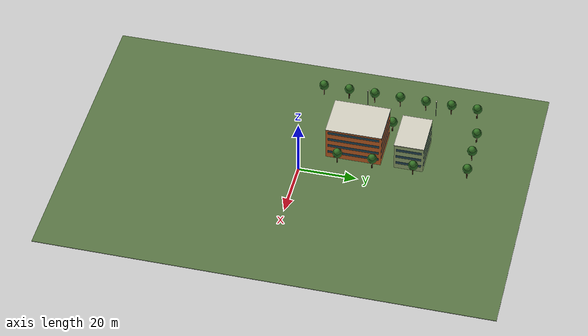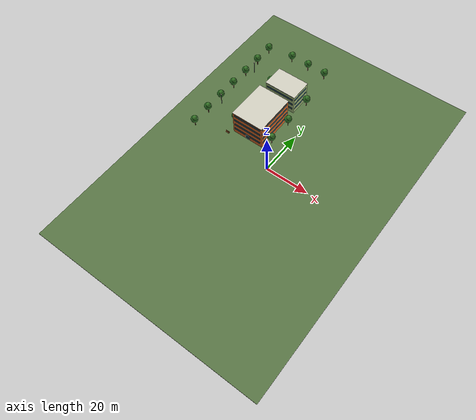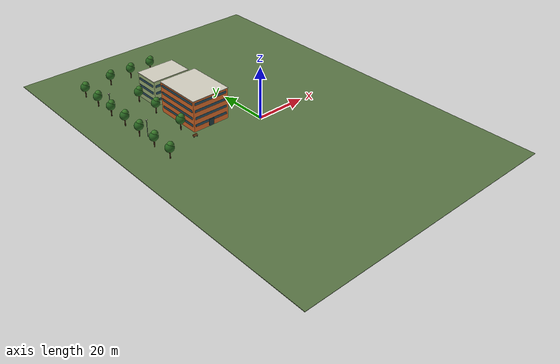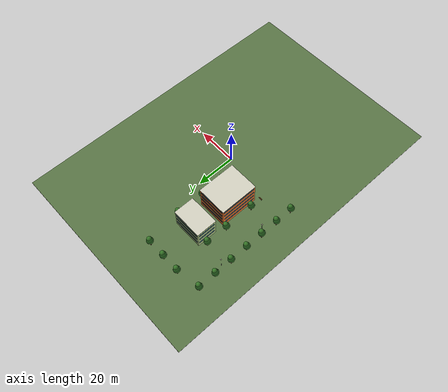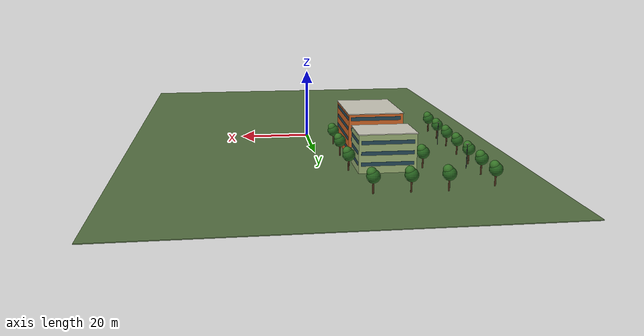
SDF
<sdf version="1.8">
 <world name="ute_city_v1">
  <model name="ground">
   <static>true</static>
   <link name="link">
    <visual name="ground">
     <pose>0 0 -0.1 0 0 0</pose>
     <geometry><box><size>106 154 0.2</size></box></geometry>
     <material>
      <ambient>0.35 0.46 0.27 1</ambient>
      <diffuse>0.35 0.46 0.27 1</diffuse>
      <specular>0.05 0.05 0.05 1</specular>
     </material>
    </visual>
    <collision name="ground_collision">
     <pose>0 0 -0.1 0 0 0</pose>
     <geometry><box><size>106 154 0.2</size></box></geometry>
    </collision>
   </link>
  </model>
  <model name="A_administration">
   <static>true</static>
   <pose>-16 17 0 0 0 0</pose>
   <link name="link">
    <visual name="block">
     <pose>0 0 6 0 0 0</pose>
     <geometry><box><size>15 19 12</size></box></geometry>
     <material>
      <ambient>0.85 0.42 0.16 1</ambient>
      <diffuse>0.85 0.42 0.16 1</diffuse>
      <specular>0.05 0.05 0.05 1</specular>
     </material>
    </visual>
    <collision name="block_collision">
     <pose>0 0 6 0 0 0</pose>
     <geometry><box><size>15 19 12</size></box></geometry>
    </collision>
    <visual name="roof">
     <pose>0 0 12.12 0 0 0</pose>
     <geometry><box><size>15.3 19.3 0.24</size></box></geometry>
     <material>
      <ambient>0.83 0.82 0.76 1</ambient>
      <diffuse>0.83 0.82 0.76 1</diffuse>
      <specular>0.05 0.05 0.05 1</specular>
     </material>
    </visual>
    <collision name="roof_collision">
     <pose>0 0 12.12 0 0 0</pose>
     <geometry><box><size>15.3 19.3 0.24</size></box></geometry>
    </collision>
    <visual name="windows_y_1_-1">
     <pose>0 -9.518 2.4 0 0 0</pose>
     <geometry><box><size>13.7 0.03 1</size></box></geometry>
     <material>
      <ambient>0.16 0.30 0.36 1</ambient>
      <diffuse>0.16 0.30 0.36 1</diffuse>
      <specular>0.05 0.05 0.05 1</specular>
     </material>
    </visual>
    <visual name="windows_x_1_-1">
     <pose>-7.518 0 2.4 0 0 0</pose>
     <geometry><box><size>0.03 17.7 1</size></box></geometry>
     <material>
      <ambient>0.16 0.30 0.36 1</ambient>
      <diffuse>0.16 0.30 0.36 1</diffuse>
      <specular>0.05 0.05 0.05 1</specular>
     </material>
    </visual>
    <visual name="windows_y_1_1">
     <pose>0 9.518 2.4 0 0 0</pose>
     <geometry><box><size>13.7 0.03 1</size></box></geometry>
     <material>
      <ambient>0.16 0.30 0.36 1</ambient>
      <diffuse>0.16 0.30 0.36 1</diffuse>
      <specular>0.05 0.05 0.05 1</specular>
     </material>
    </visual>
    <visual name="windows_x_1_1">
     <pose>7.518 0 2.4 0 0 0</pose>
     <geometry><box><size>0.03 17.7 1</size></box></geometry>
     <material>
      <ambient>0.16 0.30 0.36 1</ambient>
      <diffuse>0.16 0.30 0.36 1</diffuse>
      <specular>0.05 0.05 0.05 1</specular>
     </material>
    </visual>
    <visual name="windows_y_2_-1">
     <pose>0 -9.518 5.2 0 0 0</pose>
     <geometry><box><size>13.7 0.03 1</size></box></geometry>
     <material>
      <ambient>0.16 0.30 0.36 1</ambient>
      <diffuse>0.16 0.30 0.36 1</diffuse>
      <specular>0.05 0.05 0.05 1</specular>
     </material>
    </visual>
    <visual name="windows_x_2_-1">
     <pose>-7.518 0 5.2 0 0 0</pose>
     <geometry><box><size>0.03 17.7 1</size></box></geometry>
     <material>
      <ambient>0.16 0.30 0.36 1</ambient>
      <diffuse>0.16 0.30 0.36 1</diffuse>
      <specular>0.05 0.05 0.05 1</specular>
     </material>
    </visual>
    <visual name="windows_y_2_1">
     <pose>0 9.518 5.2 0 0 0</pose>
     <geometry><box><size>13.7 0.03 1</size></box></geometry>
     <material>
      <ambient>0.16 0.30 0.36 1</ambient>
      <diffuse>0.16 0.30 0.36 1</diffuse>
      <specular>0.05 0.05 0.05 1</specular>
     </material>
    </visual>
    <visual name="windows_x_2_1">
     <pose>7.518 0 5.2 0 0 0</pose>
     <geometry><box><size>0.03 17.7 1</size></box></geometry>
     <material>
      <ambient>0.16 0.30 0.36 1</ambient>
      <diffuse>0.16 0.30 0.36 1</diffuse>
      <specular>0.05 0.05 0.05 1</specular>
     </material>
    </visual>
    <visual name="windows_y_3_-1">
     <pose>0 -9.518 8 0 0 0</pose>
     <geometry><box><size>13.7 0.03 1</size></box></geometry>
     <material>
      <ambient>0.16 0.30 0.36 1</ambient>
      <diffuse>0.16 0.30 0.36 1</diffuse>
      <specular>0.05 0.05 0.05 1</specular>
     </material>
    </visual>
    <visual name="windows_x_3_-1">
     <pose>-7.518 0 8 0 0 0</pose>
     <geometry><box><size>0.03 17.7 1</size></box></geometry>
     <material>
      <ambient>0.16 0.30 0.36 1</ambient>
      <diffuse>0.16 0.30 0.36 1</diffuse>
      <specular>0.05 0.05 0.05 1</specular>
     </material>
    </visual>
    <visual name="windows_y_3_1">
     <pose>0 9.518 8 0 0 0</pose>
     <geometry><box><size>13.7 0.03 1</size></box></geometry>
     <material>
      <ambient>0.16 0.30 0.36 1</ambient>
      <diffuse>0.16 0.30 0.36 1</diffuse>
      <specular>0.05 0.05 0.05 1</specular>
     </material>
    </visual>
    <visual name="windows_x_3_1">
     <pose>7.518 0 8 0 0 0</pose>
     <geometry><box><size>0.03 17.7 1</size></box></geometry>
     <material>
      <ambient>0.16 0.30 0.36 1</ambient>
      <diffuse>0.16 0.30 0.36 1</diffuse>
      <specular>0.05 0.05 0.05 1</specular>
     </material>
    </visual>
    <visual name="windows_y_4_-1">
     <pose>0 -9.518 10.8 0 0 0</pose>
     <geometry><box><size>13.7 0.03 1</size></box></geometry>
     <material>
      <ambient>0.16 0.30 0.36 1</ambient>
      <diffuse>0.16 0.30 0.36 1</diffuse>
      <specular>0.05 0.05 0.05 1</specular>
     </material>
    </visual>
    <visual name="windows_x_4_-1">
     <pose>-7.518 0 10.8 0 0 0</pose>
     <geometry><box><size>0.03 17.7 1</size></box></geometry>
     <material>
      <ambient>0.16 0.30 0.36 1</ambient>
      <diffuse>0.16 0.30 0.36 1</diffuse>
      <specular>0.05 0.05 0.05 1</specular>
     </material>
    </visual>
    <visual name="windows_y_4_1">
     <pose>0 9.518 10.8 0 0 0</pose>
     <geometry><box><size>13.7 0.03 1</size></box></geometry>
     <material>
      <ambient>0.16 0.30 0.36 1</ambient>
      <diffuse>0.16 0.30 0.36 1</diffuse>
      <specular>0.05 0.05 0.05 1</specular>
     </material>
    </visual>
    <visual name="windows_x_4_1">
     <pose>7.518 0 10.8 0 0 0</pose>
     <geometry><box><size>0.03 17.7 1</size></box></geometry>
     <material>
      <ambient>0.16 0.30 0.36 1</ambient>
      <diffuse>0.16 0.30 0.36 1</diffuse>
      <specular>0.05 0.05 0.05 1</specular>
     </material>
    </visual>
    <visual name="entry">
     <pose>0 -9.518 1.3 0 0 0</pose>
     <geometry><box><size>2.1 0.04 2.6</size></box></geometry>
     <material>
      <ambient>0.12 0.22 0.24 1</ambient>
      <diffuse>0.12 0.22 0.24 1</diffuse>
      <specular>0.05 0.05 0.05 1</specular>
     </material>
    </visual>
   </link>
  </model>
  <model name="C_classrooms">
   <static>true</static>
   <pose>-16 36 0 0 0 0</pose>
   <link name="link">
    <visual name="block">
     <pose>0 0 5 0 0 0</pose>
     <geometry><box><size>15 10 10</size></box></geometry>
     <material>
      <ambient>0.63 0.72 0.48 1</ambient>
      <diffuse>0.63 0.72 0.48 1</diffuse>
      <specular>0.05 0.05 0.05 1</specular>
     </material>
    </visual>
    <collision name="block_collision">
     <pose>0 0 5 0 0 0</pose>
     <geometry><box><size>15 10 10</size></box></geometry>
    </collision>
    <visual name="roof">
     <pose>0 0 10.12 0 0 0</pose>
     <geometry><box><size>15.3 10.3 0.24</size></box></geometry>
     <material>
      <ambient>0.83 0.82 0.76 1</ambient>
      <diffuse>0.83 0.82 0.76 1</diffuse>
      <specular>0.05 0.05 0.05 1</specular>
     </material>
    </visual>
    <collision name="roof_collision">
     <pose>0 0 10.12 0 0 0</pose>
     <geometry><box><size>15.3 10.3 0.24</size></box></geometry>
    </collision>
    <visual name="windows_y_1_-1">
     <pose>0 -5.018 2.4 0 0 0</pose>
     <geometry><box><size>13.7 0.03 1</size></box></geometry>
     <material>
      <ambient>0.16 0.30 0.36 1</ambient>
      <diffuse>0.16 0.30 0.36 1</diffuse>
      <specular>0.05 0.05 0.05 1</specular>
     </material>
    </visual>
    <visual name="windows_x_1_-1">
     <pose>-7.518 0 2.4 0 0 0</pose>
     <geometry><box><size>0.03 8.7 1</size></box></geometry>
     <material>
      <ambient>0.16 0.30 0.36 1</ambient>
      <diffuse>0.16 0.30 0.36 1</diffuse>
      <specular>0.05 0.05 0.05 1</specular>
     </material>
    </visual>
    <visual name="windows_y_1_1">
     <pose>0 5.018 2.4 0 0 0</pose>
     <geometry><box><size>13.7 0.03 1</size></box></geometry>
     <material>
      <ambient>0.16 0.30 0.36 1</ambient>
      <diffuse>0.16 0.30 0.36 1</diffuse>
      <specular>0.05 0.05 0.05 1</specular>
     </material>
    </visual>
    <visual name="windows_x_1_1">
     <pose>7.518 0 2.4 0 0 0</pose>
     <geometry><box><size>0.03 8.7 1</size></box></geometry>
     <material>
      <ambient>0.16 0.30 0.36 1</ambient>
      <diffuse>0.16 0.30 0.36 1</diffuse>
      <specular>0.05 0.05 0.05 1</specular>
     </material>
    </visual>
    <visual name="windows_y_2_-1">
     <pose>0 -5.018 5.2 0 0 0</pose>
     <geometry><box><size>13.7 0.03 1</size></box></geometry>
     <material>
      <ambient>0.16 0.30 0.36 1</ambient>
      <diffuse>0.16 0.30 0.36 1</diffuse>
      <specular>0.05 0.05 0.05 1</specular>
     </material>
    </visual>
    <visual name="windows_x_2_-1">
     <pose>-7.518 0 5.2 0 0 0</pose>
     <geometry><box><size>0.03 8.7 1</size></box></geometry>
     <material>
      <ambient>0.16 0.30 0.36 1</ambient>
      <diffuse>0.16 0.30 0.36 1</diffuse>
      <specular>0.05 0.05 0.05 1</specular>
     </material>
    </visual>
    <visual name="windows_y_2_1">
     <pose>0 5.018 5.2 0 0 0</pose>
     <geometry><box><size>13.7 0.03 1</size></box></geometry>
     <material>
      <ambient>0.16 0.30 0.36 1</ambient>
      <diffuse>0.16 0.30 0.36 1</diffuse>
      <specular>0.05 0.05 0.05 1</specular>
     </material>
    </visual>
    <visual name="windows_x_2_1">
     <pose>7.518 0 5.2 0 0 0</pose>
     <geometry><box><size>0.03 8.7 1</size></box></geometry>
     <material>
      <ambient>0.16 0.30 0.36 1</ambient>
      <diffuse>0.16 0.30 0.36 1</diffuse>
      <specular>0.05 0.05 0.05 1</specular>
     </material>
    </visual>
    <visual name="windows_y_3_-1">
     <pose>0 -5.018 8 0 0 0</pose>
     <geometry><box><size>13.7 0.03 1</size></box></geometry>
     <material>
      <ambient>0.16 0.30 0.36 1</ambient>
      <diffuse>0.16 0.30 0.36 1</diffuse>
      <specular>0.05 0.05 0.05 1</specular>
     </material>
    </visual>
    <visual name="windows_x_3_-1">
     <pose>-7.518 0 8 0 0 0</pose>
     <geometry><box><size>0.03 8.7 1</size></box></geometry>
     <material>
      <ambient>0.16 0.30 0.36 1</ambient>
      <diffuse>0.16 0.30 0.36 1</diffuse>
      <specular>0.05 0.05 0.05 1</specular>
     </material>
    </visual>
    <visual name="windows_y_3_1">
     <pose>0 5.018 8 0 0 0</pose>
     <geometry><box><size>13.7 0.03 1</size></box></geometry>
     <material>
      <ambient>0.16 0.30 0.36 1</ambient>
      <diffuse>0.16 0.30 0.36 1</diffuse>
      <specular>0.05 0.05 0.05 1</specular>
     </material>
    </visual>
    <visual name="windows_x_3_1">
     <pose>7.518 0 8 0 0 0</pose>
     <geometry><box><size>0.03 8.7 1</size></box></geometry>
     <material>
      <ambient>0.16 0.30 0.36 1</ambient>
      <diffuse>0.16 0.30 0.36 1</diffuse>
      <specular>0.05 0.05 0.05 1</specular>
     </material>
    </visual>
    <visual name="entry">
     <pose>0 -5.018 1.3 0 0 0</pose>
     <geometry><box><size>2.1 0.04 2.6</size></box></geometry>
     <material>
      <ambient>0.12 0.22 0.24 1</ambient>
      <diffuse>0.12 0.22 0.24 1</diffuse>
      <specular>0.05 0.05 0.05 1</specular>
     </material>
    </visual>
   </link>
  </model>
  <model name="tree_006">
   <static>true</static>
   <pose>-39 0 0 0 0 0</pose>
   <link name="link">
    <visual name="trunk">
     <pose>0 0 1.6 0 0 0</pose>
     <geometry><cylinder><radius>0.2</radius><length>3.2</length></cylinder></geometry>
     <material>
      <ambient>0.30 0.19 0.10 1</ambient>
      <diffuse>0.30 0.19 0.10 1</diffuse>
      <specular>0.05 0.05 0.05 1</specular>
     </material>
    </visual>
    <collision name="trunk_collision">
     <pose>0 0 1.6 0 0 0</pose>
     <geometry><cylinder><radius>0.2</radius><length>3.2</length></cylinder></geometry>
    </collision>
    <visual name="canopy">
     <pose>0 0 4.2 0 0 0</pose>
     <geometry><sphere><radius>1.65</radius></sphere></geometry>
     <material>
      <ambient>0.15 0.39 0.12 1</ambient>
      <diffuse>0.15 0.39 0.12 1</diffuse>
      <specular>0.05 0.05 0.05 1</specular>
     </material>
    </visual>
    <visual name="crown">
     <pose>0.4 0 5.2 0 0 0</pose>
     <geometry><sphere><radius>1.2</radius></sphere></geometry>
     <material>
      <ambient>0.21 0.46 0.15 1</ambient>
      <diffuse>0.21 0.46 0.15 1</diffuse>
      <specular>0.05 0.05 0.05 1</specular>
     </material>
    </visual>
   </link>
  </model>
  <model name="tree_007">
   <static>true</static>
   <pose>-39 9 0 0 0 0</pose>
   <link name="link">
    <visual name="trunk">
     <pose>0 0 1.6 0 0 0</pose>
     <geometry><cylinder><radius>0.2</radius><length>3.2</length></cylinder></geometry>
     <material>
      <ambient>0.30 0.19 0.10 1</ambient>
      <diffuse>0.30 0.19 0.10 1</diffuse>
      <specular>0.05 0.05 0.05 1</specular>
     </material>
    </visual>
    <collision name="trunk_collision">
     <pose>0 0 1.6 0 0 0</pose>
     <geometry><cylinder><radius>0.2</radius><length>3.2</length></cylinder></geometry>
    </collision>
    <visual name="canopy">
     <pose>0 0 4.2 0 0 0</pose>
     <geometry><sphere><radius>1.65</radius></sphere></geometry>
     <material>
      <ambient>0.15 0.39 0.12 1</ambient>
      <diffuse>0.15 0.39 0.12 1</diffuse>
      <specular>0.05 0.05 0.05 1</specular>
     </material>
    </visual>
    <visual name="crown">
     <pose>0.4 0 5.2 0 0 0</pose>
     <geometry><sphere><radius>1.2</radius></sphere></geometry>
     <material>
      <ambient>0.21 0.46 0.15 1</ambient>
      <diffuse>0.21 0.46 0.15 1</diffuse>
      <specular>0.05 0.05 0.05 1</specular>
     </material>
    </visual>
   </link>
  </model>
  <model name="tree_008">
   <static>true</static>
   <pose>-39 18 0 0 0 0</pose>
   <link name="link">
    <visual name="trunk">
     <pose>0 0 1.6 0 0 0</pose>
     <geometry><cylinder><radius>0.2</radius><length>3.2</length></cylinder></geometry>
     <material>
      <ambient>0.30 0.19 0.10 1</ambient>
      <diffuse>0.30 0.19 0.10 1</diffuse>
      <specular>0.05 0.05 0.05 1</specular>
     </material>
    </visual>
    <collision name="trunk_collision">
     <pose>0 0 1.6 0 0 0</pose>
     <geometry><cylinder><radius>0.2</radius><length>3.2</length></cylinder></geometry>
    </collision>
    <visual name="canopy">
     <pose>0 0 4.2 0 0 0</pose>
     <geometry><sphere><radius>1.65</radius></sphere></geometry>
     <material>
      <ambient>0.15 0.39 0.12 1</ambient>
      <diffuse>0.15 0.39 0.12 1</diffuse>
      <specular>0.05 0.05 0.05 1</specular>
     </material>
    </visual>
    <visual name="crown">
     <pose>0.4 0 5.2 0 0 0</pose>
     <geometry><sphere><radius>1.2</radius></sphere></geometry>
     <material>
      <ambient>0.21 0.46 0.15 1</ambient>
      <diffuse>0.21 0.46 0.15 1</diffuse>
      <specular>0.05 0.05 0.05 1</specular>
     </material>
    </visual>
   </link>
  </model>
  <model name="tree_009">
   <static>true</static>
   <pose>-39 27 0 0 0 0</pose>
   <link name="link">
    <visual name="trunk">
     <pose>0 0 1.6 0 0 0</pose>
     <geometry><cylinder><radius>0.2</radius><length>3.2</length></cylinder></geometry>
     <material>
      <ambient>0.30 0.19 0.10 1</ambient>
      <diffuse>0.30 0.19 0.10 1</diffuse>
      <specular>0.05 0.05 0.05 1</specular>
     </material>
    </visual>
    <collision name="trunk_collision">
     <pose>0 0 1.6 0 0 0</pose>
     <geometry><cylinder><radius>0.2</radius><length>3.2</length></cylinder></geometry>
    </collision>
    <visual name="canopy">
     <pose>0 0 4.2 0 0 0</pose>
     <geometry><sphere><radius>1.65</radius></sphere></geometry>
     <material>
      <ambient>0.15 0.39 0.12 1</ambient>
      <diffuse>0.15 0.39 0.12 1</diffuse>
      <specular>0.05 0.05 0.05 1</specular>
     </material>
    </visual>
    <visual name="crown">
     <pose>0.4 0 5.2 0 0 0</pose>
     <geometry><sphere><radius>1.2</radius></sphere></geometry>
     <material>
      <ambient>0.21 0.46 0.15 1</ambient>
      <diffuse>0.21 0.46 0.15 1</diffuse>
      <specular>0.05 0.05 0.05 1</specular>
     </material>
    </visual>
   </link>
  </model>
  <model name="tree_010">
   <static>true</static>
   <pose>-39 36 0 0 0 0</pose>
   <link name="link">
    <visual name="trunk">
     <pose>0 0 1.6 0 0 0</pose>
     <geometry><cylinder><radius>0.2</radius><length>3.2</length></cylinder></geometry>
     <material>
      <ambient>0.30 0.19 0.10 1</ambient>
      <diffuse>0.30 0.19 0.10 1</diffuse>
      <specular>0.05 0.05 0.05 1</specular>
     </material>
    </visual>
    <collision name="trunk_collision">
     <pose>0 0 1.6 0 0 0</pose>
     <geometry><cylinder><radius>0.2</radius><length>3.2</length></cylinder></geometry>
    </collision>
    <visual name="canopy">
     <pose>0 0 4.2 0 0 0</pose>
     <geometry><sphere><radius>1.65</radius></sphere></geometry>
     <material>
      <ambient>0.15 0.39 0.12 1</ambient>
      <diffuse>0.15 0.39 0.12 1</diffuse>
      <specular>0.05 0.05 0.05 1</specular>
     </material>
    </visual>
    <visual name="crown">
     <pose>0.4 0 5.2 0 0 0</pose>
     <geometry><sphere><radius>1.2</radius></sphere></geometry>
     <material>
      <ambient>0.21 0.46 0.15 1</ambient>
      <diffuse>0.21 0.46 0.15 1</diffuse>
      <specular>0.05 0.05 0.05 1</specular>
     </material>
    </visual>
   </link>
  </model>
  <model name="tree_011">
   <static>true</static>
   <pose>-39 45 0 0 0 0</pose>
   <link name="link">
    <visual name="trunk">
     <pose>0 0 1.6 0 0 0</pose>
     <geometry><cylinder><radius>0.2</radius><length>3.2</length></cylinder></geometry>
     <material>
      <ambient>0.30 0.19 0.10 1</ambient>
      <diffuse>0.30 0.19 0.10 1</diffuse>
      <specular>0.05 0.05 0.05 1</specular>
     </material>
    </visual>
    <collision name="trunk_collision">
     <pose>0 0 1.6 0 0 0</pose>
     <geometry><cylinder><radius>0.2</radius><length>3.2</length></cylinder></geometry>
    </collision>
    <visual name="canopy">
     <pose>0 0 4.2 0 0 0</pose>
     <geometry><sphere><radius>1.65</radius></sphere></geometry>
     <material>
      <ambient>0.15 0.39 0.12 1</ambient>
      <diffuse>0.15 0.39 0.12 1</diffuse>
      <specular>0.05 0.05 0.05 1</specular>
     </material>
    </visual>
    <visual name="crown">
     <pose>0.4 0 5.2 0 0 0</pose>
     <geometry><sphere><radius>1.2</radius></sphere></geometry>
     <material>
      <ambient>0.21 0.46 0.15 1</ambient>
      <diffuse>0.21 0.46 0.15 1</diffuse>
      <specular>0.05 0.05 0.05 1</specular>
     </material>
    </visual>
   </link>
  </model>
  <model name="tree_012">
   <static>true</static>
   <pose>-39 54 0 0 0 0</pose>
   <link name="link">
    <visual name="trunk">
     <pose>0 0 1.6 0 0 0</pose>
     <geometry><cylinder><radius>0.2</radius><length>3.2</length></cylinder></geometry>
     <material>
      <ambient>0.30 0.19 0.10 1</ambient>
      <diffuse>0.30 0.19 0.10 1</diffuse>
      <specular>0.05 0.05 0.05 1</specular>
     </material>
    </visual>
    <collision name="trunk_collision">
     <pose>0 0 1.6 0 0 0</pose>
     <geometry><cylinder><radius>0.2</radius><length>3.2</length></cylinder></geometry>
    </collision>
    <visual name="canopy">
     <pose>0 0 4.2 0 0 0</pose>
     <geometry><sphere><radius>1.65</radius></sphere></geometry>
     <material>
      <ambient>0.15 0.39 0.12 1</ambient>
      <diffuse>0.15 0.39 0.12 1</diffuse>
      <specular>0.05 0.05 0.05 1</specular>
     </material>
    </visual>
    <visual name="crown">
     <pose>0.4 0 5.2 0 0 0</pose>
     <geometry><sphere><radius>1.2</radius></sphere></geometry>
     <material>
      <ambient>0.21 0.46 0.15 1</ambient>
      <diffuse>0.21 0.46 0.15 1</diffuse>
      <specular>0.05 0.05 0.05 1</specular>
     </material>
    </visual>
   </link>
  </model>
  <model name="tree_026">
   <static>true</static>
   <pose>-27 56 0 0 0 0</pose>
   <link name="link">
    <visual name="trunk">
     <pose>0 0 1.6 0 0 0</pose>
     <geometry><cylinder><radius>0.2</radius><length>3.2</length></cylinder></geometry>
     <material>
      <ambient>0.30 0.19 0.10 1</ambient>
      <diffuse>0.30 0.19 0.10 1</diffuse>
      <specular>0.05 0.05 0.05 1</specular>
     </material>
    </visual>
    <collision name="trunk_collision">
     <pose>0 0 1.6 0 0 0</pose>
     <geometry><cylinder><radius>0.2</radius><length>3.2</length></cylinder></geometry>
    </collision>
    <visual name="canopy">
     <pose>0 0 4.2 0 0 0</pose>
     <geometry><sphere><radius>1.65</radius></sphere></geometry>
     <material>
      <ambient>0.15 0.39 0.12 1</ambient>
      <diffuse>0.15 0.39 0.12 1</diffuse>
      <specular>0.05 0.05 0.05 1</specular>
     </material>
    </visual>
    <visual name="crown">
     <pose>0.4 0 5.2 0 0 0</pose>
     <geometry><sphere><radius>1.2</radius></sphere></geometry>
     <material>
      <ambient>0.21 0.46 0.15 1</ambient>
      <diffuse>0.21 0.46 0.15 1</diffuse>
      <specular>0.05 0.05 0.05 1</specular>
     </material>
    </visual>
   </link>
  </model>
  <model name="tree_027">
   <static>true</static>
   <pose>-18 56 0 0 0 0</pose>
   <link name="link">
    <visual name="trunk">
     <pose>0 0 1.6 0 0 0</pose>
     <geometry><cylinder><radius>0.2</radius><length>3.2</length></cylinder></geometry>
     <material>
      <ambient>0.30 0.19 0.10 1</ambient>
      <diffuse>0.30 0.19 0.10 1</diffuse>
      <specular>0.05 0.05 0.05 1</specular>
     </material>
    </visual>
    <collision name="trunk_collision">
     <pose>0 0 1.6 0 0 0</pose>
     <geometry><cylinder><radius>0.2</radius><length>3.2</length></cylinder></geometry>
    </collision>
    <visual name="canopy">
     <pose>0 0 4.2 0 0 0</pose>
     <geometry><sphere><radius>1.65</radius></sphere></geometry>
     <material>
      <ambient>0.15 0.39 0.12 1</ambient>
      <diffuse>0.15 0.39 0.12 1</diffuse>
      <specular>0.05 0.05 0.05 1</specular>
     </material>
    </visual>
    <visual name="crown">
     <pose>0.4 0 5.2 0 0 0</pose>
     <geometry><sphere><radius>1.2</radius></sphere></geometry>
     <material>
      <ambient>0.21 0.46 0.15 1</ambient>
      <diffuse>0.21 0.46 0.15 1</diffuse>
      <specular>0.05 0.05 0.05 1</specular>
     </material>
    </visual>
   </link>
  </model>
  <model name="tree_028">
   <static>true</static>
   <pose>-9 56 0 0 0 0</pose>
   <link name="link">
    <visual name="trunk">
     <pose>0 0 1.6 0 0 0</pose>
     <geometry><cylinder><radius>0.2</radius><length>3.2</length></cylinder></geometry>
     <material>
      <ambient>0.30 0.19 0.10 1</ambient>
      <diffuse>0.30 0.19 0.10 1</diffuse>
      <specular>0.05 0.05 0.05 1</specular>
     </material>
    </visual>
    <collision name="trunk_collision">
     <pose>0 0 1.6 0 0 0</pose>
     <geometry><cylinder><radius>0.2</radius><length>3.2</length></cylinder></geometry>
    </collision>
    <visual name="canopy">
     <pose>0 0 4.2 0 0 0</pose>
     <geometry><sphere><radius>1.65</radius></sphere></geometry>
     <material>
      <ambient>0.15 0.39 0.12 1</ambient>
      <diffuse>0.15 0.39 0.12 1</diffuse>
      <specular>0.05 0.05 0.05 1</specular>
     </material>
    </visual>
    <visual name="crown">
     <pose>0.4 0 5.2 0 0 0</pose>
     <geometry><sphere><radius>1.2</radius></sphere></geometry>
     <material>
      <ambient>0.21 0.46 0.15 1</ambient>
      <diffuse>0.21 0.46 0.15 1</diffuse>
      <specular>0.05 0.05 0.05 1</specular>
     </material>
    </visual>
   </link>
  </model>
  <model name="tree_037">
   <static>true</static>
   <pose>-6.5 12 0 0 0 0</pose>
   <link name="link">
    <visual name="trunk">
     <pose>0 0 1.6 0 0 0</pose>
     <geometry><cylinder><radius>0.2</radius><length>3.2</length></cylinder></geometry>
     <material>
      <ambient>0.30 0.19 0.10 1</ambient>
      <diffuse>0.30 0.19 0.10 1</diffuse>
      <specular>0.05 0.05 0.05 1</specular>
     </material>
    </visual>
    <collision name="trunk_collision">
     <pose>0 0 1.6 0 0 0</pose>
     <geometry><cylinder><radius>0.2</radius><length>3.2</length></cylinder></geometry>
    </collision>
    <visual name="canopy">
     <pose>0 0 4.2 0 0 0</pose>
     <geometry><sphere><radius>1.65</radius></sphere></geometry>
     <material>
      <ambient>0.15 0.39 0.12 1</ambient>
      <diffuse>0.15 0.39 0.12 1</diffuse>
      <specular>0.05 0.05 0.05 1</specular>
     </material>
    </visual>
    <visual name="crown">
     <pose>0.4 0 5.2 0 0 0</pose>
     <geometry><sphere><radius>1.2</radius></sphere></geometry>
     <material>
      <ambient>0.21 0.46 0.15 1</ambient>
      <diffuse>0.21 0.46 0.15 1</diffuse>
      <specular>0.05 0.05 0.05 1</specular>
     </material>
    </visual>
   </link>
  </model>
  <model name="tree_038">
   <static>true</static>
   <pose>-6.5 24 0 0 0 0</pose>
   <link name="link">
    <visual name="trunk">
     <pose>0 0 1.6 0 0 0</pose>
     <geometry><cylinder><radius>0.2</radius><length>3.2</length></cylinder></geometry>
     <material>
      <ambient>0.30 0.19 0.10 1</ambient>
      <diffuse>0.30 0.19 0.10 1</diffuse>
      <specular>0.05 0.05 0.05 1</specular>
     </material>
    </visual>
    <collision name="trunk_collision">
     <pose>0 0 1.6 0 0 0</pose>
     <geometry><cylinder><radius>0.2</radius><length>3.2</length></cylinder></geometry>
    </collision>
    <visual name="canopy">
     <pose>0 0 4.2 0 0 0</pose>
     <geometry><sphere><radius>1.65</radius></sphere></geometry>
     <material>
      <ambient>0.15 0.39 0.12 1</ambient>
      <diffuse>0.15 0.39 0.12 1</diffuse>
      <specular>0.05 0.05 0.05 1</specular>
     </material>
    </visual>
    <visual name="crown">
     <pose>0.4 0 5.2 0 0 0</pose>
     <geometry><sphere><radius>1.2</radius></sphere></geometry>
     <material>
      <ambient>0.21 0.46 0.15 1</ambient>
      <diffuse>0.21 0.46 0.15 1</diffuse>
      <specular>0.05 0.05 0.05 1</specular>
     </material>
    </visual>
   </link>
  </model>
  <model name="tree_039">
   <static>true</static>
   <pose>-6.5 38 0 0 0 0</pose>
   <link name="link">
    <visual name="trunk">
     <pose>0 0 1.6 0 0 0</pose>
     <geometry><cylinder><radius>0.2</radius><length>3.2</length></cylinder></geometry>
     <material>
      <ambient>0.30 0.19 0.10 1</ambient>
      <diffuse>0.30 0.19 0.10 1</diffuse>
      <specular>0.05 0.05 0.05 1</specular>
     </material>
    </visual>
    <collision name="trunk_collision">
     <pose>0 0 1.6 0 0 0</pose>
     <geometry><cylinder><radius>0.2</radius><length>3.2</length></cylinder></geometry>
    </collision>
    <visual name="canopy">
     <pose>0 0 4.2 0 0 0</pose>
     <geometry><sphere><radius>1.65</radius></sphere></geometry>
     <material>
      <ambient>0.15 0.39 0.12 1</ambient>
      <diffuse>0.15 0.39 0.12 1</diffuse>
      <specular>0.05 0.05 0.05 1</specular>
     </material>
    </visual>
    <visual name="crown">
     <pose>0.4 0 5.2 0 0 0</pose>
     <geometry><sphere><radius>1.2</radius></sphere></geometry>
     <material>
      <ambient>0.21 0.46 0.15 1</ambient>
      <diffuse>0.21 0.46 0.15 1</diffuse>
      <specular>0.05 0.05 0.05 1</specular>
     </material>
    </visual>
   </link>
  </model>
  <model name="tree_049">
   <static>true</static>
   <pose>-26 12 0 0 0 0</pose>
   <link name="link">
    <visual name="trunk">
     <pose>0 0 1.6 0 0 0</pose>
     <geometry><cylinder><radius>0.2</radius><length>3.2</length></cylinder></geometry>
     <material>
      <ambient>0.30 0.19 0.10 1</ambient>
      <diffuse>0.30 0.19 0.10 1</diffuse>
      <specular>0.05 0.05 0.05 1</specular>
     </material>
    </visual>
    <collision name="trunk_collision">
     <pose>0 0 1.6 0 0 0</pose>
     <geometry><cylinder><radius>0.2</radius><length>3.2</length></cylinder></geometry>
    </collision>
    <visual name="canopy">
     <pose>0 0 4.2 0 0 0</pose>
     <geometry><sphere><radius>1.65</radius></sphere></geometry>
     <material>
      <ambient>0.15 0.39 0.12 1</ambient>
      <diffuse>0.15 0.39 0.12 1</diffuse>
      <specular>0.05 0.05 0.05 1</specular>
     </material>
    </visual>
    <visual name="crown">
     <pose>0.4 0 5.2 0 0 0</pose>
     <geometry><sphere><radius>1.2</radius></sphere></geometry>
     <material>
      <ambient>0.21 0.46 0.15 1</ambient>
      <diffuse>0.21 0.46 0.15 1</diffuse>
      <specular>0.05 0.05 0.05 1</specular>
     </material>
    </visual>
   </link>
  </model>
  <model name="tree_050">
   <static>true</static>
   <pose>-26 27 0 0 0 0</pose>
   <link name="link">
    <visual name="trunk">
     <pose>0 0 1.6 0 0 0</pose>
     <geometry><cylinder><radius>0.2</radius><length>3.2</length></cylinder></geometry>
     <material>
      <ambient>0.30 0.19 0.10 1</ambient>
      <diffuse>0.30 0.19 0.10 1</diffuse>
      <specular>0.05 0.05 0.05 1</specular>
     </material>
    </visual>
    <collision name="trunk_collision">
     <pose>0 0 1.6 0 0 0</pose>
     <geometry><cylinder><radius>0.2</radius><length>3.2</length></cylinder></geometry>
    </collision>
    <visual name="canopy">
     <pose>0 0 4.2 0 0 0</pose>
     <geometry><sphere><radius>1.65</radius></sphere></geometry>
     <material>
      <ambient>0.15 0.39 0.12 1</ambient>
      <diffuse>0.15 0.39 0.12 1</diffuse>
      <specular>0.05 0.05 0.05 1</specular>
     </material>
    </visual>
    <visual name="crown">
     <pose>0.4 0 5.2 0 0 0</pose>
     <geometry><sphere><radius>1.2</radius></sphere></geometry>
     <material>
      <ambient>0.21 0.46 0.15 1</ambient>
      <diffuse>0.21 0.46 0.15 1</diffuse>
      <specular>0.05 0.05 0.05 1</specular>
     </material>
    </visual>
   </link>
  </model>
  <model name="tree_051">
   <static>true</static>
   <pose>-26 38 0 0 0 0</pose>
   <link name="link">
    <visual name="trunk">
     <pose>0 0 1.6 0 0 0</pose>
     <geometry><cylinder><radius>0.2</radius><length>3.2</length></cylinder></geometry>
     <material>
      <ambient>0.30 0.19 0.10 1</ambient>
      <diffuse>0.30 0.19 0.10 1</diffuse>
      <specular>0.05 0.05 0.05 1</specular>
     </material>
    </visual>
    <collision name="trunk_collision">
     <pose>0 0 1.6 0 0 0</pose>
     <geometry><cylinder><radius>0.2</radius><length>3.2</length></cylinder></geometry>
    </collision>
    <visual name="canopy">
     <pose>0 0 4.2 0 0 0</pose>
     <geometry><sphere><radius>1.65</radius></sphere></geometry>
     <material>
      <ambient>0.15 0.39 0.12 1</ambient>
      <diffuse>0.15 0.39 0.12 1</diffuse>
      <specular>0.05 0.05 0.05 1</specular>
     </material>
    </visual>
    <visual name="crown">
     <pose>0.4 0 5.2 0 0 0</pose>
     <geometry><sphere><radius>1.2</radius></sphere></geometry>
     <material>
      <ambient>0.21 0.46 0.15 1</ambient>
      <diffuse>0.21 0.46 0.15 1</diffuse>
      <specular>0.05 0.05 0.05 1</specular>
     </material>
    </visual>
   </link>
  </model>
  <model name="lamp_2">
   <static>true</static>
   <pose>-37 16 0 0 0 0</pose>
   <link name="link">
    <visual name="pole">
     <pose>0 0 3.3 0 0 0</pose>
     <geometry><cylinder><radius>0.08</radius><length>6.6</length></cylinder></geometry>
     <material>
      <ambient>0.25 0.27 0.29 1</ambient>
      <diffuse>0.25 0.27 0.29 1</diffuse>
      <specular>0.05 0.05 0.05 1</specular>
     </material>
    </visual>
    <collision name="pole_collision">
     <pose>0 0 3.3 0 0 0</pose>
     <geometry><cylinder><radius>0.08</radius><length>6.6</length></cylinder></geometry>
    </collision>
    <visual name="fixture">
     <pose>0 0 6.6 0 0 0</pose>
     <geometry><box><size>0.7 0.4 0.15</size></box></geometry>
     <material>
      <ambient>0.8 0.8 0.7 1</ambient>
      <diffuse>0.8 0.8 0.7 1</diffuse>
      <specular>0.05 0.05 0.05 1</specular>
     </material>
    </visual>
    <collision name="fixture_collision">
     <pose>0 0 6.6 0 0 0</pose>
     <geometry><box><size>0.7 0.4 0.15</size></box></geometry>
    </collision>
   </link>
  </model>
  <model name="lamp_3">
   <static>true</static>
   <pose>-37 40 0 0 0 0</pose>
   <link name="link">
    <visual name="pole">
     <pose>0 0 3.3 0 0 0</pose>
     <geometry><cylinder><radius>0.08</radius><length>6.6</length></cylinder></geometry>
     <material>
      <ambient>0.25 0.27 0.29 1</ambient>
      <diffuse>0.25 0.27 0.29 1</diffuse>
      <specular>0.05 0.05 0.05 1</specular>
     </material>
    </visual>
    <collision name="pole_collision">
     <pose>0 0 3.3 0 0 0</pose>
     <geometry><cylinder><radius>0.08</radius><length>6.6</length></cylinder></geometry>
    </collision>
    <visual name="fixture">
     <pose>0 0 6.6 0 0 0</pose>
     <geometry><box><size>0.7 0.4 0.15</size></box></geometry>
     <material>
      <ambient>0.8 0.8 0.7 1</ambient>
      <diffuse>0.8 0.8 0.7 1</diffuse>
      <specular>0.05 0.05 0.05 1</specular>
     </material>
    </visual>
    <collision name="fixture_collision">
     <pose>0 0 6.6 0 0 0</pose>
     <geometry><box><size>0.7 0.4 0.15</size></box></geometry>
    </collision>
   </link>
  </model>
  <model name="bench_2">
   <static>true</static>
   <pose>-25 5 0 0 0 0</pose>
   <link name="link">
    <visual name="seat">
     <pose>0 0 0.5 0 0 0</pose>
     <geometry><box><size>1.8 0.5 0.13</size></box></geometry>
     <material>
      <ambient>0.48 0.29 0.12 1</ambient>
      <diffuse>0.48 0.29 0.12 1</diffuse>
      <specular>0.05 0.05 0.05 1</specular>
     </material>
    </visual>
    <collision name="seat_collision">
     <pose>0 0 0.5 0 0 0</pose>
     <geometry><box><size>1.8 0.5 0.13</size></box></geometry>
    </collision>
    <visual name="back">
     <pose>0 0.22 0.85 0 0 0</pose>
     <geometry><box><size>1.8 0.12 0.6</size></box></geometry>
     <material>
      <ambient>0.48 0.29 0.12 1</ambient>
      <diffuse>0.48 0.29 0.12 1</diffuse>
      <specular>0.05 0.05 0.05 1</specular>
     </material>
    </visual>
    <collision name="back_collision">
     <pose>0 0.22 0.85 0 0 0</pose>
     <geometry><box><size>1.8 0.12 0.6</size></box></geometry>
    </collision>
    <visual name="leg_-1">
     <pose>-0.65 0 0.25 0 0 0</pose>
     <geometry><box><size>0.1 0.4 0.5</size></box></geometry>
     <material>
      <ambient>0.2 0.2 0.2 1</ambient>
      <diffuse>0.2 0.2 0.2 1</diffuse>
      <specular>0.05 0.05 0.05 1</specular>
     </material>
    </visual>
    <collision name="leg_-1_collision">
     <pose>-0.65 0 0.25 0 0 0</pose>
     <geometry><box><size>0.1 0.4 0.5</size></box></geometry>
    </collision>
    <visual name="leg_1">
     <pose>0.65 0 0.25 0 0 0</pose>
     <geometry><box><size>0.1 0.4 0.5</size></box></geometry>
     <material>
      <ambient>0.2 0.2 0.2 1</ambient>
      <diffuse>0.2 0.2 0.2 1</diffuse>
      <specular>0.05 0.05 0.05 1</specular>
     </material>
    </visual>
    <collision name="leg_1_collision">
     <pose>0.65 0 0.25 0 0 0</pose>
     <geometry><box><size>0.1 0.4 0.5</size></box></geometry>
    </collision>
   </link>
  </model>
 </world>
</sdf>
